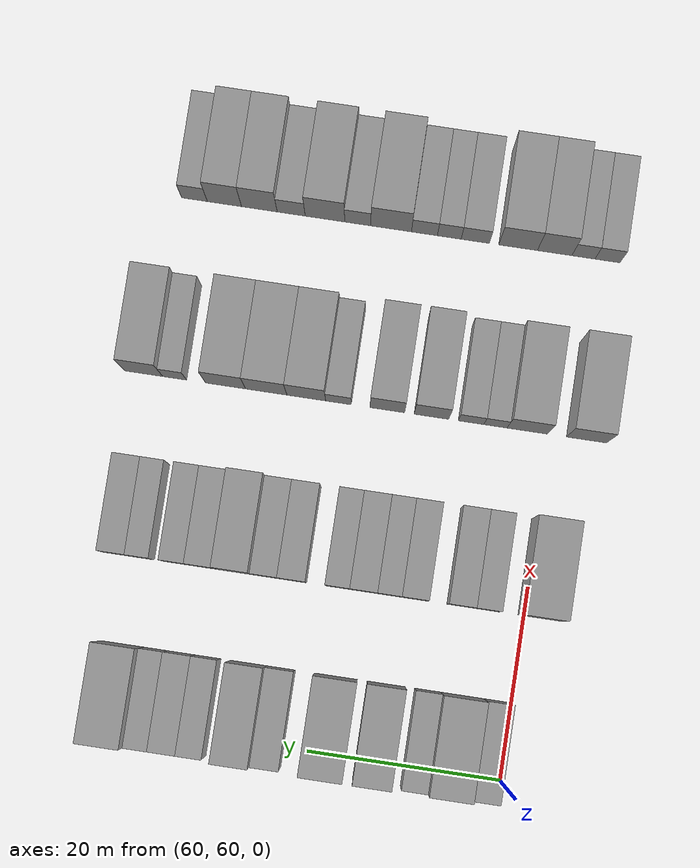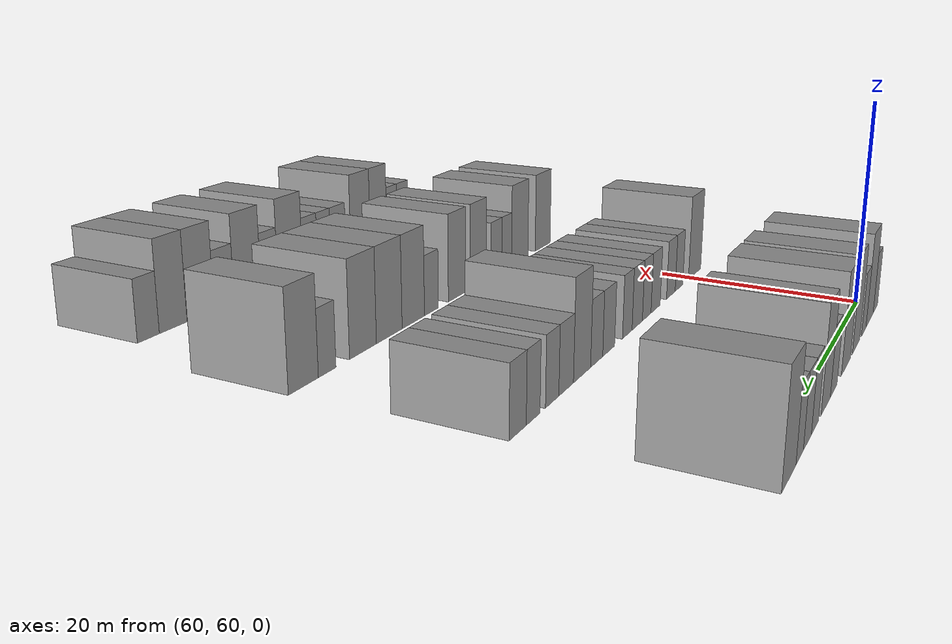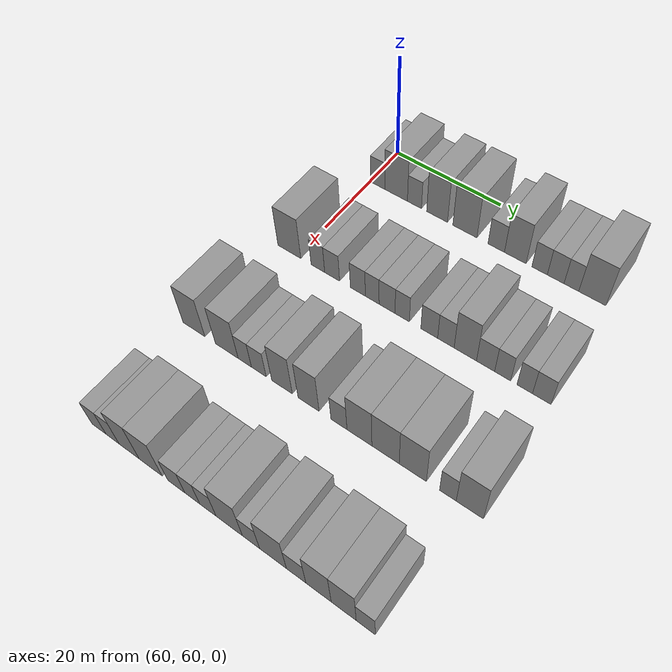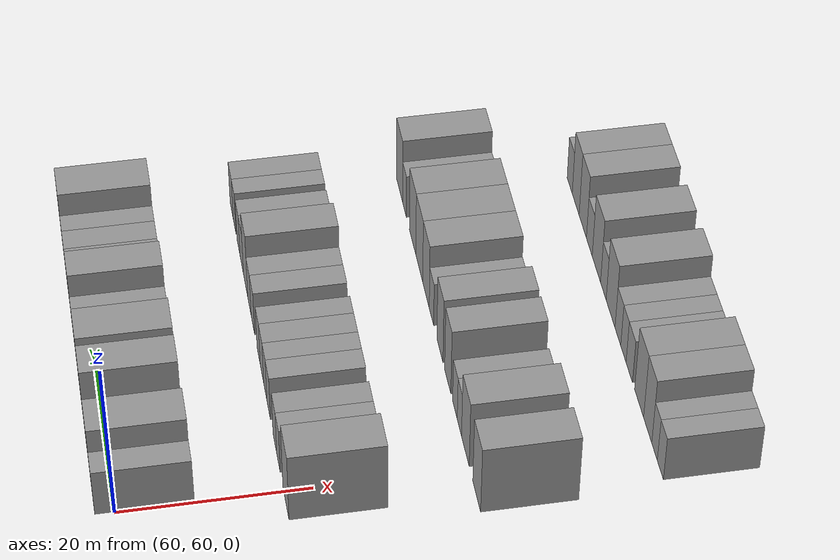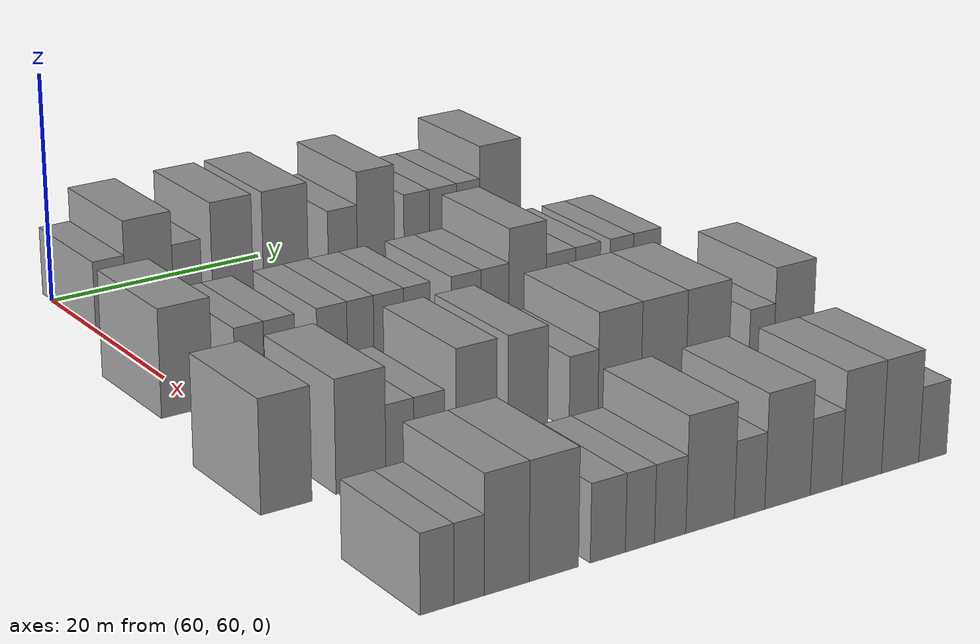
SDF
<sdf version="1.6">
 <world name="default">
  <model name="building_449">
   <static>1</static>
   <pose>63.0000 61.5015 0 0.000000 0.000000 0.000000</pose>
   <link name="link">
    <pose>0 0 3.00 0 0 0</pose>
    <collision name="collision"><geometry><box><size>10.0000 2.8616 6.0000</size></box></geometry></collision>
    <visual name="visual">
     <cast_shadows>0</cast_shadows>
     <geometry><box><size>10.0000 2.8616 6.0000</size></box></geometry>
     <material>
      <script>
       <uri>model://grey_wall/materials/scripts</uri>
       <uri>model://grey_wall/materials/textures</uri>
       <name>vrc/grey_wall</name>
      </script>
     </material>
    </visual>
   </link>
  </model>
  <model name="building_450">
   <static>1</static>
   <pose>63.0000 65.1451 0 0.000000 0.000000 0.000000</pose>
   <link name="link">
    <pose>0 0 4.50 0 0 0</pose>
    <collision name="collision"><geometry><box><size>10.0000 4.4257 9.0000</size></box></geometry></collision>
    <visual name="visual">
     <cast_shadows>0</cast_shadows>
     <geometry><box><size>10.0000 4.4257 9.0000</size></box></geometry>
     <material>
      <script>
       <uri>model://grey_wall/materials/scripts</uri>
       <uri>model://grey_wall/materials/textures</uri>
       <name>vrc/grey_wall</name>
      </script>
     </material>
    </visual>
   </link>
  </model>
  <model name="building_451">
   <static>1</static>
   <pose>63.0000 68.7112 0 0.000000 0.000000 0.000000</pose>
   <link name="link">
    <pose>0 0 3.00 0 0 0</pose>
    <collision name="collision"><geometry><box><size>10.0000 2.7064 6.0000</size></box></geometry></collision>
    <visual name="visual">
     <cast_shadows>0</cast_shadows>
     <geometry><box><size>10.0000 2.7064 6.0000</size></box></geometry>
     <material>
      <script>
       <uri>model://grey_wall/materials/scripts</uri>
       <uri>model://grey_wall/materials/textures</uri>
       <name>vrc/grey_wall</name>
      </script>
     </material>
    </visual>
   </link>
  </model>
  <model name="building_452">
   <static>1</static>
   <pose>63.0000 73.0302 0 0.000000 0.000000 0.000000</pose>
   <link name="link">
    <pose>0 0 4.50 0 0 0</pose>
    <collision name="collision"><geometry><box><size>10.0000 3.9316 9.0000</size></box></geometry></collision>
    <visual name="visual">
     <cast_shadows>0</cast_shadows>
     <geometry><box><size>10.0000 3.9316 9.0000</size></box></geometry>
     <material>
      <script>
       <uri>model://grey_wall/materials/scripts</uri>
       <uri>model://grey_wall/materials/textures</uri>
       <name>vrc/grey_wall</name>
      </script>
     </material>
    </visual>
   </link>
  </model>
  <model name="building_453">
   <static>1</static>
   <pose>63.0000 78.2139 0 0.000000 0.000000 0.000000</pose>
   <link name="link">
    <pose>0 0 4.50 0 0 0</pose>
    <collision name="collision"><geometry><box><size>10.0000 4.4359 9.0000</size></box></geometry></collision>
    <visual name="visual">
     <cast_shadows>0</cast_shadows>
     <geometry><box><size>10.0000 4.4359 9.0000</size></box></geometry>
     <material>
      <script>
       <uri>model://grey_wall/materials/scripts</uri>
       <uri>model://grey_wall/materials/textures</uri>
       <name>vrc/grey_wall</name>
      </script>
     </material>
    </visual>
   </link>
  </model>
  <model name="building_454">
   <static>1</static>
   <pose>63.0000 83.9051 0 0.000000 0.000000 0.000000</pose>
   <link name="link">
    <pose>0 0 3.00 0 0 0</pose>
    <collision name="collision"><geometry><box><size>10.0000 2.9465 6.0000</size></box></geometry></collision>
    <visual name="visual">
     <cast_shadows>0</cast_shadows>
     <geometry><box><size>10.0000 2.9465 6.0000</size></box></geometry>
     <material>
      <script>
       <uri>model://grey_wall/materials/scripts</uri>
       <uri>model://grey_wall/materials/textures</uri>
       <name>vrc/grey_wall</name>
      </script>
     </material>
    </visual>
   </link>
  </model>
  <model name="building_455">
   <static>1</static>
   <pose>63.0000 87.2789 0 0.000000 0.000000 0.000000</pose>
   <link name="link">
    <pose>0 0 4.50 0 0 0</pose>
    <collision name="collision"><geometry><box><size>10.0000 3.8010 9.0000</size></box></geometry></collision>
    <visual name="visual">
     <cast_shadows>0</cast_shadows>
     <geometry><box><size>10.0000 3.8010 9.0000</size></box></geometry>
     <material>
      <script>
       <uri>model://grey_wall/materials/scripts</uri>
       <uri>model://grey_wall/materials/textures</uri>
       <name>vrc/grey_wall</name>
      </script>
     </material>
    </visual>
   </link>
  </model>
  <model name="building_456">
   <static>1</static>
   <pose>63.0000 91.5072 0 0.000000 0.000000 0.000000</pose>
   <link name="link">
    <pose>0 0 3.00 0 0 0</pose>
    <collision name="collision"><geometry><box><size>10.0000 2.6557 6.0000</size></box></geometry></collision>
    <visual name="visual">
     <cast_shadows>0</cast_shadows>
     <geometry><box><size>10.0000 2.6557 6.0000</size></box></geometry>
     <material>
      <script>
       <uri>model://grey_wall/materials/scripts</uri>
       <uri>model://grey_wall/materials/textures</uri>
       <name>vrc/grey_wall</name>
      </script>
     </material>
    </visual>
   </link>
  </model>
  <model name="building_457">
   <static>1</static>
   <pose>63.0000 94.2543 0 0.000000 0.000000 0.000000</pose>
   <link name="link">
    <pose>0 0 3.00 0 0 0</pose>
    <collision name="collision"><geometry><box><size>10.0000 2.8384 6.0000</size></box></geometry></collision>
    <visual name="visual">
     <cast_shadows>0</cast_shadows>
     <geometry><box><size>10.0000 2.8384 6.0000</size></box></geometry>
     <material>
      <script>
       <uri>model://grey_wall/materials/scripts</uri>
       <uri>model://grey_wall/materials/textures</uri>
       <name>vrc/grey_wall</name>
      </script>
     </material>
    </visual>
   </link>
  </model>
  <model name="building_458">
   <static>1</static>
   <pose>63.0000 96.9023 0 0.000000 0.000000 0.000000</pose>
   <link name="link">
    <pose>0 0 3.00 0 0 0</pose>
    <collision name="collision"><geometry><box><size>10.0000 2.4577 6.0000</size></box></geometry></collision>
    <visual name="visual">
     <cast_shadows>0</cast_shadows>
     <geometry><box><size>10.0000 2.4577 6.0000</size></box></geometry>
     <material>
      <script>
       <uri>model://grey_wall/materials/scripts</uri>
       <uri>model://grey_wall/materials/textures</uri>
       <name>vrc/grey_wall</name>
      </script>
     </material>
    </visual>
   </link>
  </model>
  <model name="building_459">
   <static>1</static>
   <pose>63.0000 100.3597 0 0.000000 0.000000 0.000000</pose>
   <link name="link">
    <pose>0 0 4.50 0 0 0</pose>
    <collision name="collision"><geometry><box><size>10.0000 4.4569 9.0000</size></box></geometry></collision>
    <visual name="visual">
     <cast_shadows>0</cast_shadows>
     <geometry><box><size>10.0000 4.4569 9.0000</size></box></geometry>
     <material>
      <script>
       <uri>model://grey_wall/materials/scripts</uri>
       <uri>model://grey_wall/materials/textures</uri>
       <name>vrc/grey_wall</name>
      </script>
     </material>
    </visual>
   </link>
  </model>
  <model name="building_624">
   <static>1</static>
   <pose>82.0000 58.3874 0 0.000000 0.000000 0.000000</pose>
   <link name="link">
    <pose>0 0 4.50 0 0 0</pose>
    <collision name="collision"><geometry><box><size>10.0000 4.4853 9.0000</size></box></geometry></collision>
    <visual name="visual">
     <cast_shadows>0</cast_shadows>
     <geometry><box><size>10.0000 4.4853 9.0000</size></box></geometry>
     <material>
      <script>
       <uri>model://grey_wall/materials/scripts</uri>
       <uri>model://grey_wall/materials/textures</uri>
       <name>vrc/grey_wall</name>
      </script>
     </material>
    </visual>
   </link>
  </model>
  <model name="building_625">
   <static>1</static>
   <pose>82.0000 63.9290 0 0.000000 0.000000 0.000000</pose>
   <link name="link">
    <pose>0 0 3.00 0 0 0</pose>
    <collision name="collision"><geometry><box><size>10.0000 2.5979 6.0000</size></box></geometry></collision>
    <visual name="visual">
     <cast_shadows>0</cast_shadows>
     <geometry><box><size>10.0000 2.5979 6.0000</size></box></geometry>
     <material>
      <script>
       <uri>model://grey_wall/materials/scripts</uri>
       <uri>model://grey_wall/materials/textures</uri>
       <name>vrc/grey_wall</name>
      </script>
     </material>
    </visual>
   </link>
  </model>
  <model name="building_626">
   <static>1</static>
   <pose>82.0000 66.6331 0 0.000000 0.000000 0.000000</pose>
   <link name="link">
    <pose>0 0 3.00 0 0 0</pose>
    <collision name="collision"><geometry><box><size>10.0000 2.8103 6.0000</size></box></geometry></collision>
    <visual name="visual">
     <cast_shadows>0</cast_shadows>
     <geometry><box><size>10.0000 2.8103 6.0000</size></box></geometry>
     <material>
      <script>
       <uri>model://grey_wall/materials/scripts</uri>
       <uri>model://grey_wall/materials/textures</uri>
       <name>vrc/grey_wall</name>
      </script>
     </material>
    </visual>
   </link>
  </model>
  <model name="building_627">
   <static>1</static>
   <pose>82.0000 71.4227 0 0.000000 0.000000 0.000000</pose>
   <link name="link">
    <pose>0 0 3.00 0 0 0</pose>
    <collision name="collision"><geometry><box><size>10.0000 2.7689 6.0000</size></box></geometry></collision>
    <visual name="visual">
     <cast_shadows>0</cast_shadows>
     <geometry><box><size>10.0000 2.7689 6.0000</size></box></geometry>
     <material>
      <script>
       <uri>model://grey_wall/materials/scripts</uri>
       <uri>model://grey_wall/materials/textures</uri>
       <name>vrc/grey_wall</name>
      </script>
     </material>
    </visual>
   </link>
  </model>
  <model name="building_628">
   <static>1</static>
   <pose>82.0000 74.0487 0 0.000000 0.000000 0.000000</pose>
   <link name="link">
    <pose>0 0 3.00 0 0 0</pose>
    <collision name="collision"><geometry><box><size>10.0000 2.4831 6.0000</size></box></geometry></collision>
    <visual name="visual">
     <cast_shadows>0</cast_shadows>
     <geometry><box><size>10.0000 2.4831 6.0000</size></box></geometry>
     <material>
      <script>
       <uri>model://grey_wall/materials/scripts</uri>
       <uri>model://grey_wall/materials/textures</uri>
       <name>vrc/grey_wall</name>
      </script>
     </material>
    </visual>
   </link>
  </model>
  <model name="building_629">
   <static>1</static>
   <pose>82.0000 76.7109 0 0.000000 0.000000 0.000000</pose>
   <link name="link">
    <pose>0 0 3.00 0 0 0</pose>
    <collision name="collision"><geometry><box><size>10.0000 2.8413 6.0000</size></box></geometry></collision>
    <visual name="visual">
     <cast_shadows>0</cast_shadows>
     <geometry><box><size>10.0000 2.8413 6.0000</size></box></geometry>
     <material>
      <script>
       <uri>model://grey_wall/materials/scripts</uri>
       <uri>model://grey_wall/materials/textures</uri>
       <name>vrc/grey_wall</name>
      </script>
     </material>
    </visual>
   </link>
  </model>
  <model name="building_630">
   <static>1</static>
   <pose>82.0000 79.3968 0 0.000000 0.000000 0.000000</pose>
   <link name="link">
    <pose>0 0 3.00 0 0 0</pose>
    <collision name="collision"><geometry><box><size>10.0000 2.5306 6.0000</size></box></geometry></collision>
    <visual name="visual">
     <cast_shadows>0</cast_shadows>
     <geometry><box><size>10.0000 2.5306 6.0000</size></box></geometry>
     <material>
      <script>
       <uri>model://grey_wall/materials/scripts</uri>
       <uri>model://grey_wall/materials/textures</uri>
       <name>vrc/grey_wall</name>
      </script>
     </material>
    </visual>
   </link>
  </model>
  <model name="building_631">
   <static>1</static>
   <pose>82.0000 84.1034 0 0.000000 0.000000 0.000000</pose>
   <link name="link">
    <pose>0 0 3.00 0 0 0</pose>
    <collision name="collision"><geometry><box><size>10.0000 2.8827 6.0000</size></box></geometry></collision>
    <visual name="visual">
     <cast_shadows>0</cast_shadows>
     <geometry><box><size>10.0000 2.8827 6.0000</size></box></geometry>
     <material>
      <script>
       <uri>model://grey_wall/materials/scripts</uri>
       <uri>model://grey_wall/materials/textures</uri>
       <name>vrc/grey_wall</name>
      </script>
     </material>
    </visual>
   </link>
  </model>
  <model name="building_632">
   <static>1</static>
   <pose>82.0000 86.9345 0 0.000000 0.000000 0.000000</pose>
   <link name="link">
    <pose>0 0 3.00 0 0 0</pose>
    <collision name="collision"><geometry><box><size>10.0000 2.7796 6.0000</size></box></geometry></collision>
    <visual name="visual">
     <cast_shadows>0</cast_shadows>
     <geometry><box><size>10.0000 2.7796 6.0000</size></box></geometry>
     <material>
      <script>
       <uri>model://grey_wall/materials/scripts</uri>
       <uri>model://grey_wall/materials/textures</uri>
       <name>vrc/grey_wall</name>
      </script>
     </material>
    </visual>
   </link>
  </model>
  <model name="building_633">
   <static>1</static>
   <pose>82.0000 90.1818 0 0.000000 0.000000 0.000000</pose>
   <link name="link">
    <pose>0 0 4.50 0 0 0</pose>
    <collision name="collision"><geometry><box><size>10.0000 3.7149 9.0000</size></box></geometry></collision>
    <visual name="visual">
     <cast_shadows>0</cast_shadows>
     <geometry><box><size>10.0000 3.7149 9.0000</size></box></geometry>
     <material>
      <script>
       <uri>model://grey_wall/materials/scripts</uri>
       <uri>model://grey_wall/materials/textures</uri>
       <name>vrc/grey_wall</name>
      </script>
     </material>
    </visual>
   </link>
  </model>
  <model name="building_634">
   <static>1</static>
   <pose>82.0000 93.5199 0 0.000000 0.000000 0.000000</pose>
   <link name="link">
    <pose>0 0 3.00 0 0 0</pose>
    <collision name="collision"><geometry><box><size>10.0000 2.9614 6.0000</size></box></geometry></collision>
    <visual name="visual">
     <cast_shadows>0</cast_shadows>
     <geometry><box><size>10.0000 2.9614 6.0000</size></box></geometry>
     <material>
      <script>
       <uri>model://grey_wall/materials/scripts</uri>
       <uri>model://grey_wall/materials/textures</uri>
       <name>vrc/grey_wall</name>
      </script>
     </material>
    </visual>
   </link>
  </model>
  <model name="building_635">
   <static>1</static>
   <pose>82.0000 96.2858 0 0.000000 0.000000 0.000000</pose>
   <link name="link">
    <pose>0 0 3.00 0 0 0</pose>
    <collision name="collision"><geometry><box><size>10.0000 2.5704 6.0000</size></box></geometry></collision>
    <visual name="visual">
     <cast_shadows>0</cast_shadows>
     <geometry><box><size>10.0000 2.5704 6.0000</size></box></geometry>
     <material>
      <script>
       <uri>model://grey_wall/materials/scripts</uri>
       <uri>model://grey_wall/materials/textures</uri>
       <name>vrc/grey_wall</name>
      </script>
     </material>
    </visual>
   </link>
  </model>
  <model name="building_636">
   <static>1</static>
   <pose>82.0000 99.7910 0 0.000000 0.000000 0.000000</pose>
   <link name="link">
    <pose>0 0 3.00 0 0 0</pose>
    <collision name="collision"><geometry><box><size>10.0000 2.4400 6.0000</size></box></geometry></collision>
    <visual name="visual">
     <cast_shadows>0</cast_shadows>
     <geometry><box><size>10.0000 2.4400 6.0000</size></box></geometry>
     <material>
      <script>
       <uri>model://grey_wall/materials/scripts</uri>
       <uri>model://grey_wall/materials/textures</uri>
       <name>vrc/grey_wall</name>
      </script>
     </material>
    </visual>
   </link>
  </model>
  <model name="building_637">
   <static>1</static>
   <pose>82.0000 102.4497 0 0.000000 0.000000 0.000000</pose>
   <link name="link">
    <pose>0 0 3.00 0 0 0</pose>
    <collision name="collision"><geometry><box><size>10.0000 2.8775 6.0000</size></box></geometry></collision>
    <visual name="visual">
     <cast_shadows>0</cast_shadows>
     <geometry><box><size>10.0000 2.8775 6.0000</size></box></geometry>
     <material>
      <script>
       <uri>model://grey_wall/materials/scripts</uri>
       <uri>model://grey_wall/materials/textures</uri>
       <name>vrc/grey_wall</name>
      </script>
     </material>
    </visual>
   </link>
  </model>
  <model name="building_797">
   <static>1</static>
   <pose>101.0000 56.1444 0 0.000000 0.000000 0.000000</pose>
   <link name="link">
    <pose>0 0 4.50 0 0 0</pose>
    <collision name="collision"><geometry><box><size>10.0000 4.2272 9.0000</size></box></geometry></collision>
    <visual name="visual">
     <cast_shadows>0</cast_shadows>
     <geometry><box><size>10.0000 4.2272 9.0000</size></box></geometry>
     <material>
      <script>
       <uri>model://grey_wall/materials/scripts</uri>
       <uri>model://grey_wall/materials/textures</uri>
       <name>vrc/grey_wall</name>
      </script>
     </material>
    </visual>
   </link>
  </model>
  <model name="building_798">
   <static>1</static>
   <pose>101.0000 62.3849 0 0.000000 0.000000 0.000000</pose>
   <link name="link">
    <pose>0 0 4.50 0 0 0</pose>
    <collision name="collision"><geometry><box><size>10.0000 4.2537 9.0000</size></box></geometry></collision>
    <visual name="visual">
     <cast_shadows>0</cast_shadows>
     <geometry><box><size>10.0000 4.2537 9.0000</size></box></geometry>
     <material>
      <script>
       <uri>model://grey_wall/materials/scripts</uri>
       <uri>model://grey_wall/materials/textures</uri>
       <name>vrc/grey_wall</name>
      </script>
     </material>
    </visual>
   </link>
  </model>
  <model name="building_799">
   <static>1</static>
   <pose>101.0000 65.7316 0 0.000000 0.000000 0.000000</pose>
   <link name="link">
    <pose>0 0 3.00 0 0 0</pose>
    <collision name="collision"><geometry><box><size>10.0000 2.4396 6.0000</size></box></geometry></collision>
    <visual name="visual">
     <cast_shadows>0</cast_shadows>
     <geometry><box><size>10.0000 2.4396 6.0000</size></box></geometry>
     <material>
      <script>
       <uri>model://grey_wall/materials/scripts</uri>
       <uri>model://grey_wall/materials/textures</uri>
       <name>vrc/grey_wall</name>
      </script>
     </material>
    </visual>
   </link>
  </model>
  <model name="building_800">
   <static>1</static>
   <pose>101.0000 68.2859 0 0.000000 0.000000 0.000000</pose>
   <link name="link">
    <pose>0 0 3.00 0 0 0</pose>
    <collision name="collision"><geometry><box><size>10.0000 2.6691 6.0000</size></box></geometry></collision>
    <visual name="visual">
     <cast_shadows>0</cast_shadows>
     <geometry><box><size>10.0000 2.6691 6.0000</size></box></geometry>
     <material>
      <script>
       <uri>model://grey_wall/materials/scripts</uri>
       <uri>model://grey_wall/materials/textures</uri>
       <name>vrc/grey_wall</name>
      </script>
     </material>
    </visual>
   </link>
  </model>
  <model name="building_801">
   <static>1</static>
   <pose>101.0000 72.4386 0 0.000000 0.000000 0.000000</pose>
   <link name="link">
    <pose>0 0 4.50 0 0 0</pose>
    <collision name="collision"><geometry><box><size>10.0000 3.6362 9.0000</size></box></geometry></collision>
    <visual name="visual">
     <cast_shadows>0</cast_shadows>
     <geometry><box><size>10.0000 3.6362 9.0000</size></box></geometry>
     <material>
      <script>
       <uri>model://grey_wall/materials/scripts</uri>
       <uri>model://grey_wall/materials/textures</uri>
       <name>vrc/grey_wall</name>
      </script>
     </material>
    </visual>
   </link>
  </model>
  <model name="building_802">
   <static>1</static>
   <pose>101.0000 77.0672 0 0.000000 0.000000 0.000000</pose>
   <link name="link">
    <pose>0 0 4.50 0 0 0</pose>
    <collision name="collision"><geometry><box><size>10.0000 3.6210 9.0000</size></box></geometry></collision>
    <visual name="visual">
     <cast_shadows>0</cast_shadows>
     <geometry><box><size>10.0000 3.6210 9.0000</size></box></geometry>
     <material>
      <script>
       <uri>model://grey_wall/materials/scripts</uri>
       <uri>model://grey_wall/materials/textures</uri>
       <name>vrc/grey_wall</name>
      </script>
     </material>
    </visual>
   </link>
  </model>
  <model name="building_803">
   <static>1</static>
   <pose>101.0000 82.2175 0 0.000000 0.000000 0.000000</pose>
   <link name="link">
    <pose>0 0 3.00 0 0 0</pose>
    <collision name="collision"><geometry><box><size>10.0000 2.6798 6.0000</size></box></geometry></collision>
    <visual name="visual">
     <cast_shadows>0</cast_shadows>
     <geometry><box><size>10.0000 2.6798 6.0000</size></box></geometry>
     <material>
      <script>
       <uri>model://grey_wall/materials/scripts</uri>
       <uri>model://grey_wall/materials/textures</uri>
       <name>vrc/grey_wall</name>
      </script>
     </material>
    </visual>
   </link>
  </model>
  <model name="building_804">
   <static>1</static>
   <pose>101.0000 85.5962 0 0.000000 0.000000 0.000000</pose>
   <link name="link">
    <pose>0 0 4.50 0 0 0</pose>
    <collision name="collision"><geometry><box><size>10.0000 4.0775 9.0000</size></box></geometry></collision>
    <visual name="visual">
     <cast_shadows>0</cast_shadows>
     <geometry><box><size>10.0000 4.0775 9.0000</size></box></geometry>
     <material>
      <script>
       <uri>model://grey_wall/materials/scripts</uri>
       <uri>model://grey_wall/materials/textures</uri>
       <name>vrc/grey_wall</name>
      </script>
     </material>
    </visual>
   </link>
  </model>
  <model name="building_805">
   <static>1</static>
   <pose>101.0000 89.8144 0 0.000000 0.000000 0.000000</pose>
   <link name="link">
    <pose>0 0 4.50 0 0 0</pose>
    <collision name="collision"><geometry><box><size>10.0000 4.3589 9.0000</size></box></geometry></collision>
    <visual name="visual">
     <cast_shadows>0</cast_shadows>
     <geometry><box><size>10.0000 4.3589 9.0000</size></box></geometry>
     <material>
      <script>
       <uri>model://grey_wall/materials/scripts</uri>
       <uri>model://grey_wall/materials/textures</uri>
       <name>vrc/grey_wall</name>
      </script>
     </material>
    </visual>
   </link>
  </model>
  <model name="building_806">
   <static>1</static>
   <pose>101.0000 94.1086 0 0.000000 0.000000 0.000000</pose>
   <link name="link">
    <pose>0 0 4.50 0 0 0</pose>
    <collision name="collision"><geometry><box><size>10.0000 4.2296 9.0000</size></box></geometry></collision>
    <visual name="visual">
     <cast_shadows>0</cast_shadows>
     <geometry><box><size>10.0000 4.2296 9.0000</size></box></geometry>
     <material>
      <script>
       <uri>model://grey_wall/materials/scripts</uri>
       <uri>model://grey_wall/materials/textures</uri>
       <name>vrc/grey_wall</name>
      </script>
     </material>
    </visual>
   </link>
  </model>
  <model name="building_807">
   <static>1</static>
   <pose>101.0000 99.4759 0 0.000000 0.000000 0.000000</pose>
   <link name="link">
    <pose>0 0 3.00 0 0 0</pose>
    <collision name="collision"><geometry><box><size>10.0000 2.5050 6.0000</size></box></geometry></collision>
    <visual name="visual">
     <cast_shadows>0</cast_shadows>
     <geometry><box><size>10.0000 2.5050 6.0000</size></box></geometry>
     <material>
      <script>
       <uri>model://grey_wall/materials/scripts</uri>
       <uri>model://grey_wall/materials/textures</uri>
       <name>vrc/grey_wall</name>
      </script>
     </material>
    </visual>
   </link>
  </model>
  <model name="building_808">
   <static>1</static>
   <pose>101.0000 102.7372 0 0.000000 0.000000 0.000000</pose>
   <link name="link">
    <pose>0 0 4.50 0 0 0</pose>
    <collision name="collision"><geometry><box><size>10.0000 4.0176 9.0000</size></box></geometry></collision>
    <visual name="visual">
     <cast_shadows>0</cast_shadows>
     <geometry><box><size>10.0000 4.0176 9.0000</size></box></geometry>
     <material>
      <script>
       <uri>model://grey_wall/materials/scripts</uri>
       <uri>model://grey_wall/materials/textures</uri>
       <name>vrc/grey_wall</name>
      </script>
     </material>
    </visual>
   </link>
  </model>
  <model name="building_974">
   <static>1</static>
   <pose>120.0000 56.5930 0 0.000000 0.000000 0.000000</pose>
   <link name="link">
    <pose>0 0 3.00 0 0 0</pose>
    <collision name="collision"><geometry><box><size>10.0000 2.6562 6.0000</size></box></geometry></collision>
    <visual name="visual">
     <cast_shadows>0</cast_shadows>
     <geometry><box><size>10.0000 2.6562 6.0000</size></box></geometry>
     <material>
      <script>
       <uri>model://grey_wall/materials/scripts</uri>
       <uri>model://grey_wall/materials/textures</uri>
       <name>vrc/grey_wall</name>
      </script>
     </material>
    </visual>
   </link>
  </model>
  <model name="building_975">
   <static>1</static>
   <pose>120.0000 59.1414 0 0.000000 0.000000 0.000000</pose>
   <link name="link">
    <pose>0 0 3.00 0 0 0</pose>
    <collision name="collision"><geometry><box><size>10.0000 2.4405 6.0000</size></box></geometry></collision>
    <visual name="visual">
     <cast_shadows>0</cast_shadows>
     <geometry><box><size>10.0000 2.4405 6.0000</size></box></geometry>
     <material>
      <script>
       <uri>model://grey_wall/materials/scripts</uri>
       <uri>model://grey_wall/materials/textures</uri>
       <name>vrc/grey_wall</name>
      </script>
     </material>
    </visual>
   </link>
  </model>
  <model name="building_976">
   <static>1</static>
   <pose>120.0000 62.1872 0 0.000000 0.000000 0.000000</pose>
   <link name="link">
    <pose>0 0 4.50 0 0 0</pose>
    <collision name="collision"><geometry><box><size>10.0000 3.6511 9.0000</size></box></geometry></collision>
    <visual name="visual">
     <cast_shadows>0</cast_shadows>
     <geometry><box><size>10.0000 3.6511 9.0000</size></box></geometry>
     <material>
      <script>
       <uri>model://grey_wall/materials/scripts</uri>
       <uri>model://grey_wall/materials/textures</uri>
       <name>vrc/grey_wall</name>
      </script>
     </material>
    </visual>
   </link>
  </model>
  <model name="building_977">
   <static>1</static>
   <pose>120.0000 66.0608 0 0.000000 0.000000 0.000000</pose>
   <link name="link">
    <pose>0 0 4.50 0 0 0</pose>
    <collision name="collision"><geometry><box><size>10.0000 4.0962 9.0000</size></box></geometry></collision>
    <visual name="visual">
     <cast_shadows>0</cast_shadows>
     <geometry><box><size>10.0000 4.0962 9.0000</size></box></geometry>
     <material>
      <script>
       <uri>model://grey_wall/materials/scripts</uri>
       <uri>model://grey_wall/materials/textures</uri>
       <name>vrc/grey_wall</name>
      </script>
     </material>
    </visual>
   </link>
  </model>
  <model name="building_978">
   <static>1</static>
   <pose>120.0000 70.6014 0 0.000000 0.000000 0.000000</pose>
   <link name="link">
    <pose>0 0 3.00 0 0 0</pose>
    <collision name="collision"><geometry><box><size>10.0000 2.9850 6.0000</size></box></geometry></collision>
    <visual name="visual">
     <cast_shadows>0</cast_shadows>
     <geometry><box><size>10.0000 2.9850 6.0000</size></box></geometry>
     <material>
      <script>
       <uri>model://grey_wall/materials/scripts</uri>
       <uri>model://grey_wall/materials/textures</uri>
       <name>vrc/grey_wall</name>
      </script>
     </material>
    </visual>
   </link>
  </model>
  <model name="building_979">
   <static>1</static>
   <pose>120.0000 73.3514 0 0.000000 0.000000 0.000000</pose>
   <link name="link">
    <pose>0 0 3.00 0 0 0</pose>
    <collision name="collision"><geometry><box><size>10.0000 2.5150 6.0000</size></box></geometry></collision>
    <visual name="visual">
     <cast_shadows>0</cast_shadows>
     <geometry><box><size>10.0000 2.5150 6.0000</size></box></geometry>
     <material>
      <script>
       <uri>model://grey_wall/materials/scripts</uri>
       <uri>model://grey_wall/materials/textures</uri>
       <name>vrc/grey_wall</name>
      </script>
     </material>
    </visual>
   </link>
  </model>
  <model name="building_980">
   <static>1</static>
   <pose>120.0000 75.9798 0 0.000000 0.000000 0.000000</pose>
   <link name="link">
    <pose>0 0 3.00 0 0 0</pose>
    <collision name="collision"><geometry><box><size>10.0000 2.7419 6.0000</size></box></geometry></collision>
    <visual name="visual">
     <cast_shadows>0</cast_shadows>
     <geometry><box><size>10.0000 2.7419 6.0000</size></box></geometry>
     <material>
      <script>
       <uri>model://grey_wall/materials/scripts</uri>
       <uri>model://grey_wall/materials/textures</uri>
       <name>vrc/grey_wall</name>
      </script>
     </material>
    </visual>
   </link>
  </model>
  <model name="building_981">
   <static>1</static>
   <pose>120.0000 79.5094 0 0.000000 0.000000 0.000000</pose>
   <link name="link">
    <pose>0 0 4.50 0 0 0</pose>
    <collision name="collision"><geometry><box><size>10.0000 4.3174 9.0000</size></box></geometry></collision>
    <visual name="visual">
     <cast_shadows>0</cast_shadows>
     <geometry><box><size>10.0000 4.3174 9.0000</size></box></geometry>
     <material>
      <script>
       <uri>model://grey_wall/materials/scripts</uri>
       <uri>model://grey_wall/materials/textures</uri>
       <name>vrc/grey_wall</name>
      </script>
     </material>
    </visual>
   </link>
  </model>
  <model name="building_982">
   <static>1</static>
   <pose>120.0000 83.0531 0 0.000000 0.000000 0.000000</pose>
   <link name="link">
    <pose>0 0 3.00 0 0 0</pose>
    <collision name="collision"><geometry><box><size>10.0000 2.7700 6.0000</size></box></geometry></collision>
    <visual name="visual">
     <cast_shadows>0</cast_shadows>
     <geometry><box><size>10.0000 2.7700 6.0000</size></box></geometry>
     <material>
      <script>
       <uri>model://grey_wall/materials/scripts</uri>
       <uri>model://grey_wall/materials/textures</uri>
       <name>vrc/grey_wall</name>
      </script>
     </material>
    </visual>
   </link>
  </model>
  <model name="building_983">
   <static>1</static>
   <pose>120.0000 86.5377 0 0.000000 0.000000 0.000000</pose>
   <link name="link">
    <pose>0 0 4.50 0 0 0</pose>
    <collision name="collision"><geometry><box><size>10.0000 4.1992 9.0000</size></box></geometry></collision>
    <visual name="visual">
     <cast_shadows>0</cast_shadows>
     <geometry><box><size>10.0000 4.1992 9.0000</size></box></geometry>
     <material>
      <script>
       <uri>model://grey_wall/materials/scripts</uri>
       <uri>model://grey_wall/materials/textures</uri>
       <name>vrc/grey_wall</name>
      </script>
     </material>
    </visual>
   </link>
  </model>
  <model name="building_984">
   <static>1</static>
   <pose>120.0000 90.1219 0 0.000000 0.000000 0.000000</pose>
   <link name="link">
    <pose>0 0 3.00 0 0 0</pose>
    <collision name="collision"><geometry><box><size>10.0000 2.9691 6.0000</size></box></geometry></collision>
    <visual name="visual">
     <cast_shadows>0</cast_shadows>
     <geometry><box><size>10.0000 2.9691 6.0000</size></box></geometry>
     <material>
      <script>
       <uri>model://grey_wall/materials/scripts</uri>
       <uri>model://grey_wall/materials/textures</uri>
       <name>vrc/grey_wall</name>
      </script>
     </material>
    </visual>
   </link>
  </model>
  <model name="building_985">
   <static>1</static>
   <pose>120.0000 93.5033 0 0.000000 0.000000 0.000000</pose>
   <link name="link">
    <pose>0 0 4.50 0 0 0</pose>
    <collision name="collision"><geometry><box><size>10.0000 3.7938 9.0000</size></box></geometry></collision>
    <visual name="visual">
     <cast_shadows>0</cast_shadows>
     <geometry><box><size>10.0000 3.7938 9.0000</size></box></geometry>
     <material>
      <script>
       <uri>model://grey_wall/materials/scripts</uri>
       <uri>model://grey_wall/materials/textures</uri>
       <name>vrc/grey_wall</name>
      </script>
     </material>
    </visual>
   </link>
  </model>
  <model name="building_986">
   <static>1</static>
   <pose>120.0000 97.2198 0 0.000000 0.000000 0.000000</pose>
   <link name="link">
    <pose>0 0 4.50 0 0 0</pose>
    <collision name="collision"><geometry><box><size>10.0000 3.6392 9.0000</size></box></geometry></collision>
    <visual name="visual">
     <cast_shadows>0</cast_shadows>
     <geometry><box><size>10.0000 3.6392 9.0000</size></box></geometry>
     <material>
      <script>
       <uri>model://grey_wall/materials/scripts</uri>
       <uri>model://grey_wall/materials/textures</uri>
       <name>vrc/grey_wall</name>
      </script>
     </material>
    </visual>
   </link>
  </model>
  <model name="building_987">
   <static>1</static>
   <pose>120.0000 100.4044 0 0.000000 0.000000 0.000000</pose>
   <link name="link">
    <pose>0 0 3.00 0 0 0</pose>
    <collision name="collision"><geometry><box><size>10.0000 2.7301 6.0000</size></box></geometry></collision>
    <visual name="visual">
     <cast_shadows>0</cast_shadows>
     <geometry><box><size>10.0000 2.7301 6.0000</size></box></geometry>
     <material>
      <script>
       <uri>model://grey_wall/materials/scripts</uri>
       <uri>model://grey_wall/materials/textures</uri>
       <name>vrc/grey_wall</name>
      </script>
     </material>
    </visual>
   </link>
  </model>
 </world>
</sdf>
